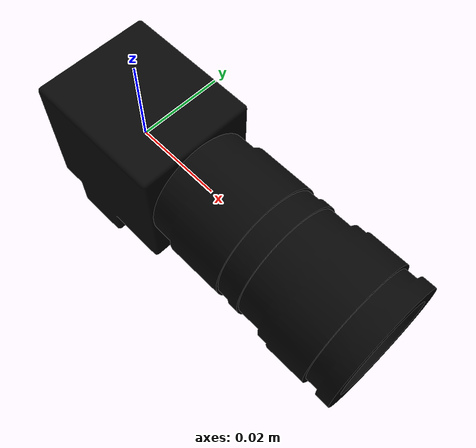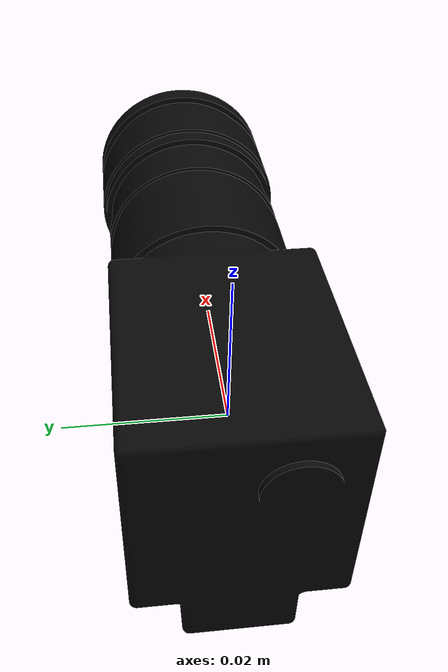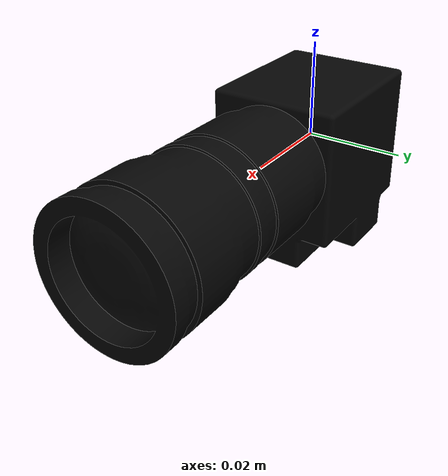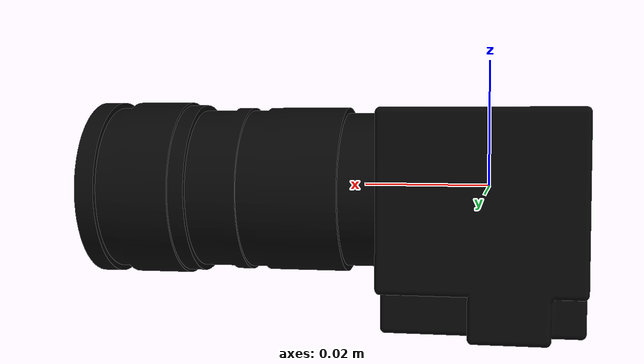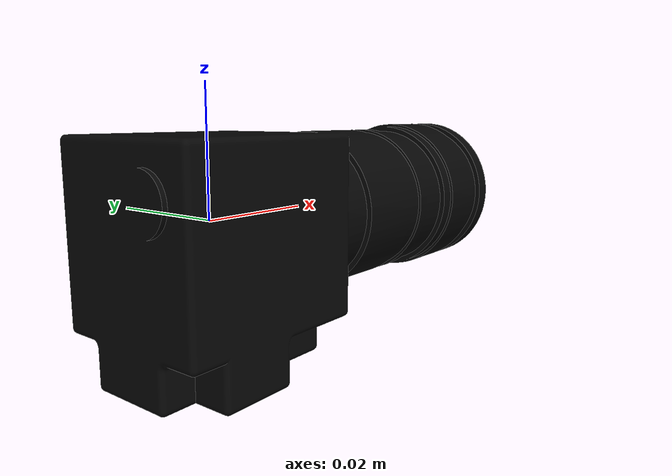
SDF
<?xml version="1.0" encoding="UTF-8"?>
<!-- |    This document was autogenerated by xacro4sdf from model.sdf.xacro            | -->
<!-- |    EDITING THIS FILE BY HAND IS NOT RECOMMENDED                                 | -->
<sdf version="1.7">
	<!--xacro_define_macro: industrial_camera-->
	<!--xacro_define_macro: industrial_camera_model-->
	<model name="simple_industrial_camera">
		<link name="simple_industrial_camera">
			<inertial>
				<pose>0.025 0 0 0 0 0</pose>
				<mass>0.05</mass>
				<inertia>
					<ixx>7.141666666666669e-06</ixx>
					<ixy>0</ixy>
					<ixz>0</ixz>
					<iyy>3.1204166666666675e-05</iyy>
					<iyz>0</iyz>
					<izz>2.9270833333333334e-05</izz>
				</inertia>
			</inertial>
			<visual name="visual">
				<geometry>
					<mesh>
						<uri>model://industrial_camera/meshes/industrial_camera.dae</uri>
					</mesh>
				</geometry>
			</visual>
			<collision name="collision">
				<pose>0.025 0 0 0 0 0</pose>
				<geometry>
					<box>
						<size>0.08 0.025 0.033</size>
					</box>
				</geometry>
			</collision>
			<sensor name="simple_industrial_camera" type="camera">
				<always_on>1</always_on>
				<update_rate>30.0</update_rate>
				<camera>
					<horizontal_fov>1.0</horizontal_fov>
					<image>
						<width>640.0</width>
						<height>480.0</height>
					</image>
					<clip>
						<near>0.1</near>
						<far>100</far>
					</clip>
				</camera>
			</sensor>
		</link>
	</model>
</sdf>
